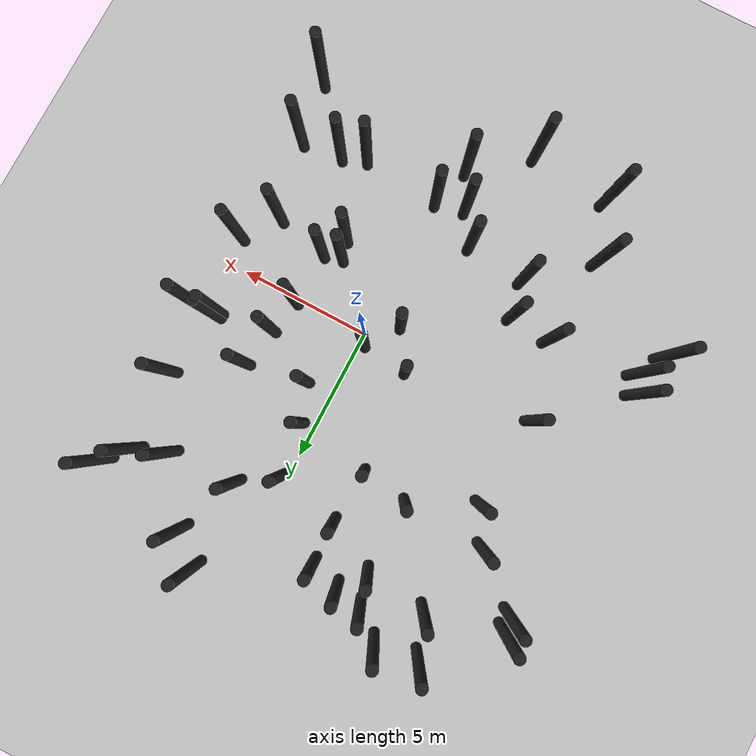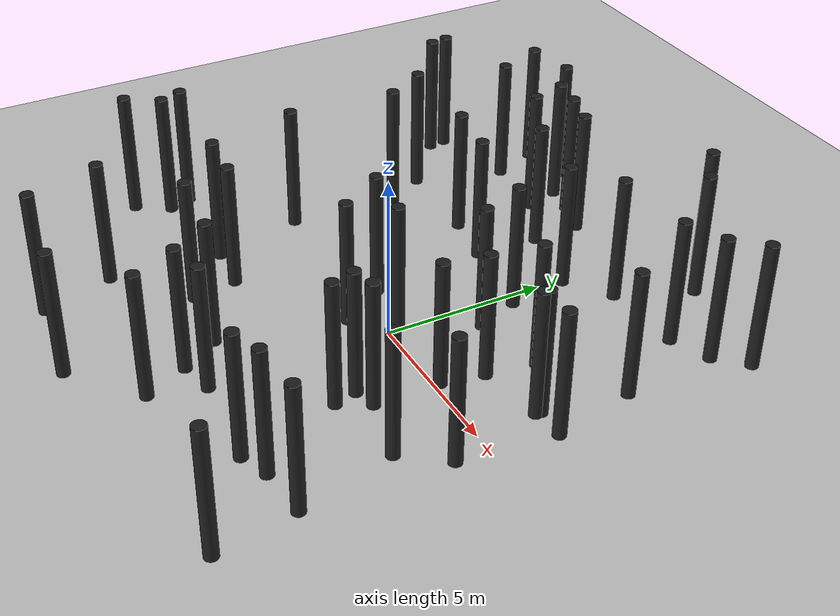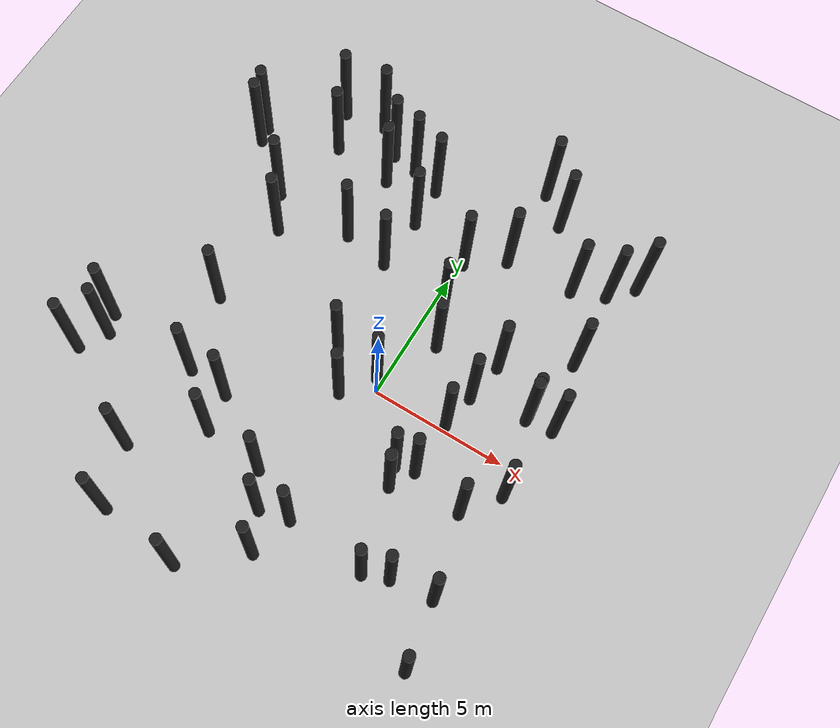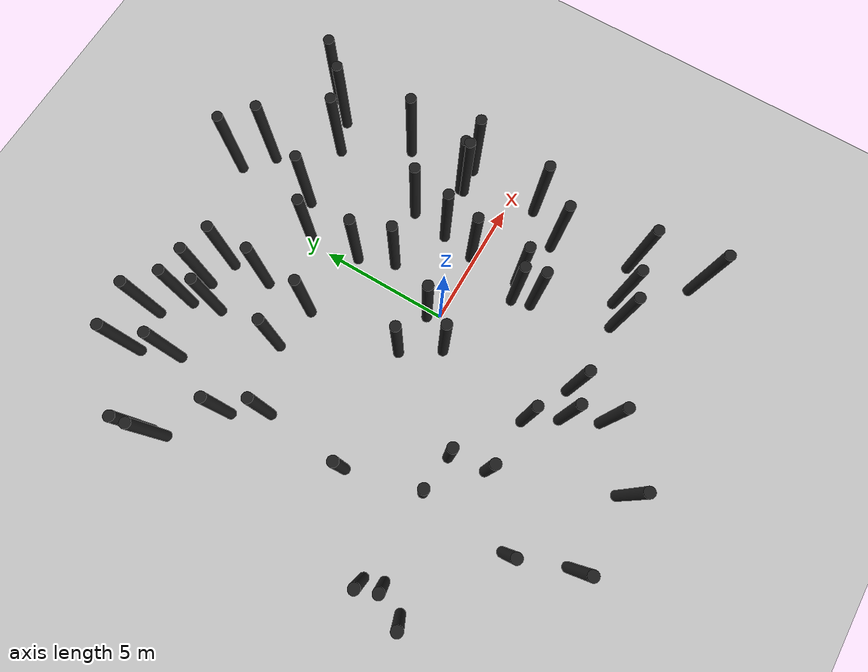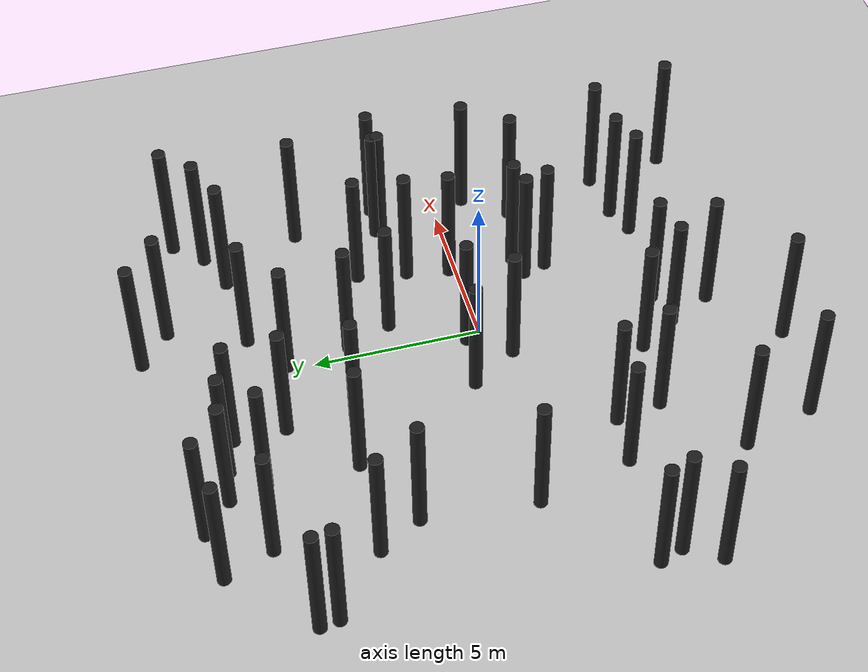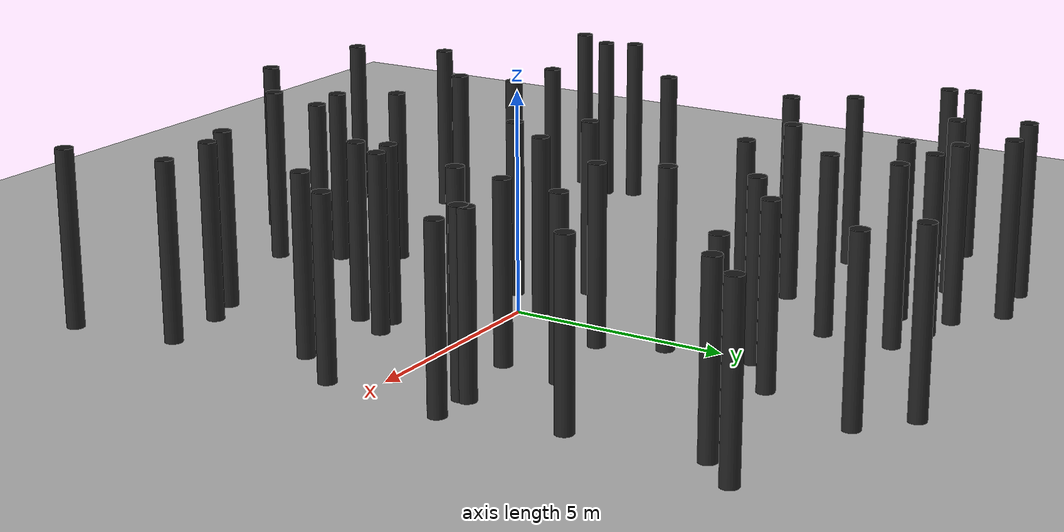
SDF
<sdf version="1.5">
 <world name="default">
  <model name="ground_plane">
   <static>1</static>
   <link name="link">
    <collision name="collision">
     <geometry><plane><normal>0 0 1</normal><size>200 200</size></plane></geometry>
     <surface><friction><ode><mu>100</mu><mu2>50</mu2></ode></friction></surface>
    </collision>
    <visual name="visual">
     <cast_shadows>0</cast_shadows>
     <geometry><plane><normal>0 0 1</normal><size>200 200</size></plane></geometry>
     <material>
      <script><uri>file://media/materials/scripts/gazebo.material</uri><name>Gazebo/Grey</name></script>
     </material>
    </visual>
   </link>
  </model>
  <model name="forest_clone_2">
   <pose>-2.32627 4.31326 -0.001627 0 -0 0</pose>
   <static>1</static>
   <link name="cylinder::link">
    <inertial>
     <mass>1</mass>
     <inertia><ixx>0.083</ixx><ixy>0</ixy><ixz>0</ixz><iyy>0.083</iyy><iyz>0</iyz><izz>0.083</izz></inertia>
    </inertial>
    <collision name="collision">
     <geometry><cylinder><radius>0.2</radius><length>4</length></cylinder></geometry>
    </collision>
    <visual name="visual">
     <geometry><cylinder><radius>0.2</radius><length>4</length></cylinder></geometry>
     <material>
      <script><uri>file://media/materials/scripts/gazebo.material</uri><name>Gazebo/Black</name></script>
     </material>
    </visual>
    <pose>0 0 2 0 -0 0</pose>
   </link>
  </model>
  <model name="forest_clone_5">
   <pose>-4.02803 7.27232 -0.002835 0 -0 0</pose>
   <static>1</static>
   <link name="cylinder::link">
    <inertial>
     <mass>1</mass>
     <inertia><ixx>0.083</ixx><ixy>0</ixy><ixz>0</ixz><iyy>0.083</iyy><iyz>0</iyz><izz>0.083</izz></inertia>
    </inertial>
    <collision name="collision">
     <geometry><cylinder><radius>0.2</radius><length>4</length></cylinder></geometry>
    </collision>
    <visual name="visual">
     <geometry><cylinder><radius>0.2</radius><length>4</length></cylinder></geometry>
     <material>
      <script><uri>file://media/materials/scripts/gazebo.material</uri><name>Gazebo/Black</name></script>
     </material>
    </visual>
    <pose>0 0 2 0 -0 0</pose>
   </link>
  </model>
  <model name="forest_clone_9">
   <pose>4.9494 1.80469 0.002967 0 -0 0</pose>
   <static>1</static>
   <link name="cylinder::link">
    <inertial>
     <mass>1</mass>
     <inertia><ixx>0.083</ixx><ixy>0</ixy><ixz>0</ixz><iyy>0.083</iyy><iyz>0</iyz><izz>0.083</izz></inertia>
    </inertial>
    <collision name="collision">
     <geometry><cylinder><radius>0.2</radius><length>4</length></cylinder></geometry>
    </collision>
    <visual name="visual">
     <geometry><cylinder><radius>0.2</radius><length>4</length></cylinder></geometry>
     <material>
      <script><uri>file://media/materials/scripts/gazebo.material</uri><name>Gazebo/Black</name></script>
     </material>
    </visual>
    <pose>0 0 2 0 -0 0</pose>
   </link>
  </model>
  <model name="forest_clone_11">
   <pose>-4.38543 -2.89842 -0.004006 0 -0 0</pose>
   <static>1</static>
   <link name="cylinder::link">
    <inertial>
     <mass>1</mass>
     <inertia><ixx>0.083</ixx><ixy>0</ixy><ixz>0</ixz><iyy>0.083</iyy><iyz>0</iyz><izz>0.083</izz></inertia>
    </inertial>
    <collision name="collision">
     <geometry><cylinder><radius>0.2</radius><length>4</length></cylinder></geometry>
    </collision>
    <visual name="visual">
     <geometry><cylinder><radius>0.2</radius><length>4</length></cylinder></geometry>
     <material>
      <script><uri>file://media/materials/scripts/gazebo.material</uri><name>Gazebo/Black</name></script>
     </material>
    </visual>
    <pose>0 0 2 0 -0 0</pose>
   </link>
  </model>
  <model name="forest_clone_14">
   <pose>-1.13931 -5.70303 -0.004506 0 -0 0</pose>
   <static>1</static>
   <link name="cylinder::link">
    <inertial>
     <mass>1</mass>
     <inertia><ixx>0.083</ixx><ixy>0</ixy><ixz>0</ixz><iyy>0.083</iyy><iyz>0</iyz><izz>0.083</izz></inertia>
    </inertial>
    <collision name="collision">
     <geometry><cylinder><radius>0.2</radius><length>4</length></cylinder></geometry>
    </collision>
    <visual name="visual">
     <geometry><cylinder><radius>0.2</radius><length>4</length></cylinder></geometry>
     <material>
      <script><uri>file://media/materials/scripts/gazebo.material</uri><name>Gazebo/Black</name></script>
     </material>
    </visual>
    <pose>0 0 2 0 -0 0</pose>
   </link>
  </model>
  <model name="forest_clone_15">
   <pose>-6.35011 3.45369 0.003337 0 -0 0</pose>
   <static>1</static>
   <link name="cylinder::link">
    <inertial>
     <mass>1</mass>
     <inertia><ixx>0.083</ixx><ixy>0</ixy><ixz>0</ixz><iyy>0.083</iyy><iyz>0</iyz><izz>0.083</izz></inertia>
    </inertial>
    <collision name="collision">
     <geometry><cylinder><radius>0.2</radius><length>4</length></cylinder></geometry>
    </collision>
    <visual name="visual">
     <geometry><cylinder><radius>0.2</radius><length>4</length></cylinder></geometry>
     <material>
      <script><uri>file://media/materials/scripts/gazebo.material</uri><name>Gazebo/Black</name></script>
     </material>
    </visual>
    <pose>0 0 2 0 -0 0</pose>
   </link>
  </model>
  <model name="forest_clone_18">
   <pose>5.92535 1.9138 -0.002272 0 -0 0</pose>
   <static>1</static>
   <link name="cylinder::link">
    <inertial>
     <mass>1</mass>
     <inertia><ixx>0.083</ixx><ixy>0</ixy><ixz>0</ixz><iyy>0.083</iyy><iyz>0</iyz><izz>0.083</izz></inertia>
    </inertial>
    <collision name="collision">
     <geometry><cylinder><radius>0.2</radius><length>4</length></cylinder></geometry>
    </collision>
    <visual name="visual">
     <geometry><cylinder><radius>0.2</radius><length>4</length></cylinder></geometry>
     <material>
      <script><uri>file://media/materials/scripts/gazebo.material</uri><name>Gazebo/Black</name></script>
     </material>
    </visual>
    <pose>0 0 2 0 -0 0</pose>
   </link>
  </model>
  <model name="forest_clone_19">
   <pose>-2.20388 6.31733 -0.001496 0 -0 0</pose>
   <static>1</static>
   <link name="cylinder::link">
    <inertial>
     <mass>1</mass>
     <inertia><ixx>0.083</ixx><ixy>0</ixy><ixz>0</ixz><iyy>0.083</iyy><iyz>0</iyz><izz>0.083</izz></inertia>
    </inertial>
    <collision name="collision">
     <geometry><cylinder><radius>0.2</radius><length>4</length></cylinder></geometry>
    </collision>
    <visual name="visual">
     <geometry><cylinder><radius>0.2</radius><length>4</length></cylinder></geometry>
     <material>
      <script><uri>file://media/materials/scripts/gazebo.material</uri><name>Gazebo/Black</name></script>
     </material>
    </visual>
    <pose>0 0 2 0 -0 0</pose>
   </link>
  </model>
  <model name="forest_clone_21">
   <pose>0.126506 5.79653 -0.000546 0 -0 0</pose>
   <static>1</static>
   <link name="cylinder::link">
    <inertial>
     <mass>1</mass>
     <inertia><ixx>0.083</ixx><ixy>0</ixy><ixz>0</ixz><iyy>0.083</iyy><iyz>0</iyz><izz>0.083</izz></inertia>
    </inertial>
    <collision name="collision">
     <geometry><cylinder><radius>0.2</radius><length>4</length></cylinder></geometry>
    </collision>
    <visual name="visual">
     <geometry><cylinder><radius>0.2</radius><length>4</length></cylinder></geometry>
     <material>
      <script><uri>file://media/materials/scripts/gazebo.material</uri><name>Gazebo/Black</name></script>
     </material>
    </visual>
    <pose>0 0 2 0 -0 0</pose>
   </link>
  </model>
  <model name="forest_clone_23">
   <pose>5.38656 4.45946 0.001076 0 -0 0</pose>
   <static>1</static>
   <link name="cylinder::link">
    <inertial>
     <mass>1</mass>
     <inertia><ixx>0.083</ixx><ixy>0</ixy><ixz>0</ixz><iyy>0.083</iyy><iyz>0</iyz><izz>0.083</izz></inertia>
    </inertial>
    <collision name="collision">
     <geometry><cylinder><radius>0.2</radius><length>4</length></cylinder></geometry>
    </collision>
    <visual name="visual">
     <geometry><cylinder><radius>0.2</radius><length>4</length></cylinder></geometry>
     <material>
      <script><uri>file://media/materials/scripts/gazebo.material</uri><name>Gazebo/Black</name></script>
     </material>
    </visual>
    <pose>0 0 2 0 -0 0</pose>
   </link>
  </model>
  <model name="forest_clone_26">
   <pose>4.63647 -2.27152 0.001396 0 -0 0</pose>
   <static>1</static>
   <link name="cylinder::link">
    <inertial>
     <mass>1</mass>
     <inertia><ixx>0.083</ixx><ixy>0</ixy><ixz>0</ixz><iyy>0.083</iyy><iyz>0</iyz><izz>0.083</izz></inertia>
    </inertial>
    <collision name="collision">
     <geometry><cylinder><radius>0.2</radius><length>4</length></cylinder></geometry>
    </collision>
    <visual name="visual">
     <geometry><cylinder><radius>0.2</radius><length>4</length></cylinder></geometry>
     <material>
      <script><uri>file://media/materials/scripts/gazebo.material</uri><name>Gazebo/Black</name></script>
     </material>
    </visual>
    <pose>0 0 2 0 -0 0</pose>
   </link>
  </model>
  <model name="forest_clone_27">
   <pose>4.95092 1.96603 -0.000124 0 -0 0</pose>
   <static>1</static>
   <link name="cylinder::link">
    <inertial>
     <mass>1</mass>
     <inertia><ixx>0.083</ixx><ixy>0</ixy><ixz>0</ixz><iyy>0.083</iyy><iyz>0</iyz><izz>0.083</izz></inertia>
    </inertial>
    <collision name="collision">
     <geometry><cylinder><radius>0.2</radius><length>4</length></cylinder></geometry>
    </collision>
    <visual name="visual">
     <geometry><cylinder><radius>0.2</radius><length>4</length></cylinder></geometry>
     <material>
      <script><uri>file://media/materials/scripts/gazebo.material</uri><name>Gazebo/Black</name></script>
     </material>
    </visual>
    <pose>0 0 2 0 -0 0</pose>
   </link>
  </model>
  <model name="forest_clone_31">
   <pose>-6.85207 8.98828 -0.000139 0 -0 0</pose>
   <static>1</static>
   <link name="cylinder::link">
    <inertial>
     <mass>1</mass>
     <inertia><ixx>0.083</ixx><ixy>0</ixy><ixz>0</ixz><iyy>0.083</iyy><iyz>0</iyz><izz>0.083</izz></inertia>
    </inertial>
    <collision name="collision">
     <geometry><cylinder><radius>0.2</radius><length>4</length></cylinder></geometry>
    </collision>
    <visual name="visual">
     <geometry><cylinder><radius>0.2</radius><length>4</length></cylinder></geometry>
     <material>
      <script><uri>file://media/materials/scripts/gazebo.material</uri><name>Gazebo/Black</name></script>
     </material>
    </visual>
    <pose>0 0 2 0 -0 0</pose>
   </link>
  </model>
  <model name="forest_clone_32">
   <pose>-1.97657 0.643385 0.001926 0 -0 0</pose>
   <static>1</static>
   <link name="cylinder::link">
    <inertial>
     <mass>1</mass>
     <inertia><ixx>0.083</ixx><ixy>0</ixy><ixz>0</ixz><iyy>0.083</iyy><iyz>0</iyz><izz>0.083</izz></inertia>
    </inertial>
    <collision name="collision">
     <geometry><cylinder><radius>0.2</radius><length>4</length></cylinder></geometry>
    </collision>
    <visual name="visual">
     <geometry><cylinder><radius>0.2</radius><length>4</length></cylinder></geometry>
     <material>
      <script><uri>file://media/materials/scripts/gazebo.material</uri><name>Gazebo/Black</name></script>
     </material>
    </visual>
    <pose>0 0 2 0 -0 0</pose>
   </link>
  </model>
  <model name="forest_clone_35">
   <pose>3.95483 6.90924 -0.004175 0 -0 0</pose>
   <static>1</static>
   <link name="cylinder::link">
    <inertial>
     <mass>1</mass>
     <inertia><ixx>0.083</ixx><ixy>0</ixy><ixz>0</ixz><iyy>0.083</iyy><iyz>0</iyz><izz>0.083</izz></inertia>
    </inertial>
    <collision name="collision">
     <geometry><cylinder><radius>0.2</radius><length>4</length></cylinder></geometry>
    </collision>
    <visual name="visual">
     <geometry><cylinder><radius>0.2</radius><length>4</length></cylinder></geometry>
     <material>
      <script><uri>file://media/materials/scripts/gazebo.material</uri><name>Gazebo/Black</name></script>
     </material>
    </visual>
    <pose>0 0 2 0 -0 0</pose>
   </link>
  </model>
  <model name="forest_clone_39">
   <pose>1.96261 -2.00047 -0.003388 0 -0 0</pose>
   <static>1</static>
   <link name="cylinder::link">
    <inertial>
     <mass>1</mass>
     <inertia><ixx>0.083</ixx><ixy>0</ixy><ixz>0</ixz><iyy>0.083</iyy><iyz>0</iyz><izz>0.083</izz></inertia>
    </inertial>
    <collision name="collision">
     <geometry><cylinder><radius>0.2</radius><length>4</length></cylinder></geometry>
    </collision>
    <visual name="visual">
     <geometry><cylinder><radius>0.2</radius><length>4</length></cylinder></geometry>
     <material>
      <script><uri>file://media/materials/scripts/gazebo.material</uri><name>Gazebo/Black</name></script>
     </material>
    </visual>
    <pose>0 0 2 0 -0 0</pose>
   </link>
  </model>
  <model name="forest_clone_45">
   <pose>-5.91536 -2.75286 0.001283 0 -0 0</pose>
   <static>1</static>
   <link name="cylinder::link">
    <inertial>
     <mass>1</mass>
     <inertia><ixx>0.083</ixx><ixy>0</ixy><ixz>0</ixz><iyy>0.083</iyy><iyz>0</iyz><izz>0.083</izz></inertia>
    </inertial>
    <collision name="collision">
     <geometry><cylinder><radius>0.2</radius><length>4</length></cylinder></geometry>
    </collision>
    <visual name="visual">
     <geometry><cylinder><radius>0.2</radius><length>4</length></cylinder></geometry>
     <material>
      <script><uri>file://media/materials/scripts/gazebo.material</uri><name>Gazebo/Black</name></script>
     </material>
    </visual>
    <pose>0 0 2 0 -0 0</pose>
   </link>
  </model>
  <model name="forest_clone_51">
   <pose>3.82708 -5.39292 0.004396 0 -0 0</pose>
   <static>1</static>
   <link name="cylinder::link">
    <inertial>
     <mass>1</mass>
     <inertia><ixx>0.083</ixx><ixy>0</ixy><ixz>0</ixz><iyy>0.083</iyy><iyz>0</iyz><izz>0.083</izz></inertia>
    </inertial>
    <collision name="collision">
     <geometry><cylinder><radius>0.2</radius><length>4</length></cylinder></geometry>
    </collision>
    <visual name="visual">
     <geometry><cylinder><radius>0.2</radius><length>4</length></cylinder></geometry>
     <material>
      <script><uri>file://media/materials/scripts/gazebo.material</uri><name>Gazebo/Black</name></script>
     </material>
    </visual>
    <pose>0 0 2 0 -0 0</pose>
   </link>
  </model>
  <model name="forest_clone_53">
   <pose>5.14675 7.38791 0.003297 0 -0 0</pose>
   <static>1</static>
   <link name="cylinder::link">
    <inertial>
     <mass>1</mass>
     <inertia><ixx>0.083</ixx><ixy>0</ixy><ixz>0</ixz><iyy>0.083</iyy><iyz>0</iyz><izz>0.083</izz></inertia>
    </inertial>
    <collision name="collision">
     <geometry><cylinder><radius>0.2</radius><length>4</length></cylinder></geometry>
    </collision>
    <visual name="visual">
     <geometry><cylinder><radius>0.2</radius><length>4</length></cylinder></geometry>
     <material>
      <script><uri>file://media/materials/scripts/gazebo.material</uri><name>Gazebo/Black</name></script>
     </material>
    </visual>
    <pose>0 0 2 0 -0 0</pose>
   </link>
  </model>
  <model name="forest_clone_54">
   <pose>-1.90214 -4.54583 -0.002734 0 -0 0</pose>
   <static>1</static>
   <link name="cylinder::link">
    <inertial>
     <mass>1</mass>
     <inertia><ixx>0.083</ixx><ixy>0</ixy><ixz>0</ixz><iyy>0.083</iyy><iyz>0</iyz><izz>0.083</izz></inertia>
    </inertial>
    <collision name="collision">
     <geometry><cylinder><radius>0.2</radius><length>4</length></cylinder></geometry>
    </collision>
    <visual name="visual">
     <geometry><cylinder><radius>0.2</radius><length>4</length></cylinder></geometry>
     <material>
      <script><uri>file://media/materials/scripts/gazebo.material</uri><name>Gazebo/Black</name></script>
     </material>
    </visual>
    <pose>0 0 2 0 -0 0</pose>
   </link>
  </model>
  <model name="forest_clone_55">
   <pose>5.77939 -7.65209 -0.001006 0 -0 0</pose>
   <static>1</static>
   <link name="cylinder::link">
    <inertial>
     <mass>1</mass>
     <inertia><ixx>0.083</ixx><ixy>0</ixy><ixz>0</ixz><iyy>0.083</iyy><iyz>0</iyz><izz>0.083</izz></inertia>
    </inertial>
    <collision name="collision">
     <geometry><cylinder><radius>0.2</radius><length>4</length></cylinder></geometry>
    </collision>
    <visual name="visual">
     <geometry><cylinder><radius>0.2</radius><length>4</length></cylinder></geometry>
     <material>
      <script><uri>file://media/materials/scripts/gazebo.material</uri><name>Gazebo/Black</name></script>
     </material>
    </visual>
    <pose>0 0 2 0 -0 0</pose>
   </link>
  </model>
  <model name="forest_clone_58">
   <pose>-7.08669 4.73721 0.002306 0 -0 0</pose>
   <static>1</static>
   <link name="cylinder::link">
    <inertial>
     <mass>1</mass>
     <inertia><ixx>0.083</ixx><ixy>0</ixy><ixz>0</ixz><iyy>0.083</iyy><iyz>0</iyz><izz>0.083</izz></inertia>
    </inertial>
    <collision name="collision">
     <geometry><cylinder><radius>0.2</radius><length>4</length></cylinder></geometry>
    </collision>
    <visual name="visual">
     <geometry><cylinder><radius>0.2</radius><length>4</length></cylinder></geometry>
     <material>
      <script><uri>file://media/materials/scripts/gazebo.material</uri><name>Gazebo/Black</name></script>
     </material>
    </visual>
    <pose>0 0 2 0 -0 0</pose>
   </link>
  </model>
  <model name="forest_clone_59">
   <pose>-6.28718 7.52604 0.004725 0 -0 0</pose>
   <static>1</static>
   <link name="cylinder::link">
    <inertial>
     <mass>1</mass>
     <inertia><ixx>0.083</ixx><ixy>0</ixy><ixz>0</ixz><iyy>0.083</iyy><iyz>0</iyz><izz>0.083</izz></inertia>
    </inertial>
    <collision name="collision">
     <geometry><cylinder><radius>0.2</radius><length>4</length></cylinder></geometry>
    </collision>
    <visual name="visual">
     <geometry><cylinder><radius>0.2</radius><length>4</length></cylinder></geometry>
     <material>
      <script><uri>file://media/materials/scripts/gazebo.material</uri><name>Gazebo/Black</name></script>
     </material>
    </visual>
    <pose>0 0 2 0 -0 0</pose>
   </link>
  </model>
  <model name="forest_clone_60">
   <pose>2.90987 1.48255 -0.004372 0 -0 0</pose>
   <static>1</static>
   <link name="cylinder::link">
    <inertial>
     <mass>1</mass>
     <inertia><ixx>0.083</ixx><ixy>0</ixy><ixz>0</ixz><iyy>0.083</iyy><iyz>0</iyz><izz>0.083</izz></inertia>
    </inertial>
    <collision name="collision">
     <geometry><cylinder><radius>0.2</radius><length>4</length></cylinder></geometry>
    </collision>
    <visual name="visual">
     <geometry><cylinder><radius>0.2</radius><length>4</length></cylinder></geometry>
     <material>
      <script><uri>file://media/materials/scripts/gazebo.material</uri><name>Gazebo/Black</name></script>
     </material>
    </visual>
    <pose>0 0 2 0 -0 0</pose>
   </link>
  </model>
  <model name="forest_clone_67">
   <pose>2.35435 9.00346 -0.004957 0 -0 0</pose>
   <static>1</static>
   <link name="cylinder::link">
    <inertial>
     <mass>1</mass>
     <inertia><ixx>0.083</ixx><ixy>0</ixy><ixz>0</ixz><iyy>0.083</iyy><iyz>0</iyz><izz>0.083</izz></inertia>
    </inertial>
    <collision name="collision">
     <geometry><cylinder><radius>0.2</radius><length>4</length></cylinder></geometry>
    </collision>
    <visual name="visual">
     <geometry><cylinder><radius>0.2</radius><length>4</length></cylinder></geometry>
     <material>
      <script><uri>file://media/materials/scripts/gazebo.material</uri><name>Gazebo/Black</name></script>
     </material>
    </visual>
    <pose>0 0 2 0 -0 0</pose>
   </link>
  </model>
  <model name="forest_clone_68">
   <pose>2.16167 -2.71421 0.000607 0 -0 0</pose>
   <static>1</static>
   <link name="cylinder::link">
    <inertial>
     <mass>1</mass>
     <inertia><ixx>0.083</ixx><ixy>0</ixy><ixz>0</ixz><iyy>0.083</iyy><iyz>0</iyz><izz>0.083</izz></inertia>
    </inertial>
    <collision name="collision">
     <geometry><cylinder><radius>0.2</radius><length>4</length></cylinder></geometry>
    </collision>
    <visual name="visual">
     <geometry><cylinder><radius>0.2</radius><length>4</length></cylinder></geometry>
     <material>
      <script><uri>file://media/materials/scripts/gazebo.material</uri><name>Gazebo/Black</name></script>
     </material>
    </visual>
    <pose>0 0 2 0 -0 0</pose>
   </link>
  </model>
  <model name="forest_clone_73">
   <pose>5.3752 -5.23029 -0.003107 0 -0 0</pose>
   <static>1</static>
   <link name="cylinder::link">
    <inertial>
     <mass>1</mass>
     <inertia><ixx>0.083</ixx><ixy>0</ixy><ixz>0</ixz><iyy>0.083</iyy><iyz>0</iyz><izz>0.083</izz></inertia>
    </inertial>
    <collision name="collision">
     <geometry><cylinder><radius>0.2</radius><length>4</length></cylinder></geometry>
    </collision>
    <visual name="visual">
     <geometry><cylinder><radius>0.2</radius><length>4</length></cylinder></geometry>
     <material>
      <script><uri>file://media/materials/scripts/gazebo.material</uri><name>Gazebo/Black</name></script>
     </material>
    </visual>
    <pose>0 0 2 0 -0 0</pose>
   </link>
  </model>
  <model name="forest_clone_74">
   <pose>1.31878 9.91554 0.003826 0 -0 0</pose>
   <static>1</static>
   <link name="cylinder::link">
    <inertial>
     <mass>1</mass>
     <inertia><ixx>0.083</ixx><ixy>0</ixy><ixz>0</ixz><iyy>0.083</iyy><iyz>0</iyz><izz>0.083</izz></inertia>
    </inertial>
    <collision name="collision">
     <geometry><cylinder><radius>0.2</radius><length>4</length></cylinder></geometry>
    </collision>
    <visual name="visual">
     <geometry><cylinder><radius>0.2</radius><length>4</length></cylinder></geometry>
     <material>
      <script><uri>file://media/materials/scripts/gazebo.material</uri><name>Gazebo/Black</name></script>
     </material>
    </visual>
    <pose>0 0 2 0 -0 0</pose>
   </link>
  </model>
  <model name="forest_clone_78">
   <pose>-5.29095 9.21377 0.003456 0 -0 0</pose>
   <static>1</static>
   <link name="cylinder::link">
    <inertial>
     <mass>1</mass>
     <inertia><ixx>0.083</ixx><ixy>0</ixy><ixz>0</ixz><iyy>0.083</iyy><iyz>0</iyz><izz>0.083</izz></inertia>
    </inertial>
    <collision name="collision">
     <geometry><cylinder><radius>0.2</radius><length>4</length></cylinder></geometry>
    </collision>
    <visual name="visual">
     <geometry><cylinder><radius>0.2</radius><length>4</length></cylinder></geometry>
     <material>
      <script><uri>file://media/materials/scripts/gazebo.material</uri><name>Gazebo/Black</name></script>
     </material>
    </visual>
    <pose>0 0 2 0 -0 0</pose>
   </link>
  </model>
  <model name="forest_clone_79">
   <pose>-9.19141 -3.14274 0.000226 0 -0 0</pose>
   <static>1</static>
   <link name="cylinder::link">
    <inertial>
     <mass>1</mass>
     <inertia><ixx>0.083</ixx><ixy>0</ixy><ixz>0</ixz><iyy>0.083</iyy><iyz>0</iyz><izz>0.083</izz></inertia>
    </inertial>
    <collision name="collision">
     <geometry><cylinder><radius>0.2</radius><length>4</length></cylinder></geometry>
    </collision>
    <visual name="visual">
     <geometry><cylinder><radius>0.2</radius><length>4</length></cylinder></geometry>
     <material>
      <script><uri>file://media/materials/scripts/gazebo.material</uri><name>Gazebo/Black</name></script>
     </material>
    </visual>
    <pose>0 0 2 0 -0 0</pose>
   </link>
  </model>
  <model name="forest_clone_80">
   <pose>-0.486051 -7.03798 -0.004589 0 -0 0</pose>
   <static>1</static>
   <link name="cylinder::link">
    <inertial>
     <mass>1</mass>
     <inertia><ixx>0.083</ixx><ixy>0</ixy><ixz>0</ixz><iyy>0.083</iyy><iyz>0</iyz><izz>0.083</izz></inertia>
    </inertial>
    <collision name="collision">
     <geometry><cylinder><radius>0.2</radius><length>4</length></cylinder></geometry>
    </collision>
    <visual name="visual">
     <geometry><cylinder><radius>0.2</radius><length>4</length></cylinder></geometry>
     <material>
      <script><uri>file://media/materials/scripts/gazebo.material</uri><name>Gazebo/Black</name></script>
     </material>
    </visual>
    <pose>0 0 2 0 -0 0</pose>
   </link>
  </model>
  <model name="forest_clone_82">
   <pose>-1.06767 -0.752338 -0.003155 0 -0 0</pose>
   <static>1</static>
   <link name="cylinder::link">
    <inertial>
     <mass>1</mass>
     <inertia><ixx>0.083</ixx><ixy>0</ixy><ixz>0</ixz><iyy>0.083</iyy><iyz>0</iyz><izz>0.083</izz></inertia>
    </inertial>
    <collision name="collision">
     <geometry><cylinder><radius>0.2</radius><length>4</length></cylinder></geometry>
    </collision>
    <visual name="visual">
     <geometry><cylinder><radius>0.2</radius><length>4</length></cylinder></geometry>
     <material>
      <script><uri>file://media/materials/scripts/gazebo.material</uri><name>Gazebo/Black</name></script>
     </material>
    </visual>
    <pose>0 0 2 0 -0 0</pose>
   </link>
  </model>
  <model name="forest_clone_83">
   <pose>-3.3342 8.19967 0.004501 0 -0 0</pose>
   <static>1</static>
   <link name="cylinder::link">
    <inertial>
     <mass>1</mass>
     <inertia><ixx>0.083</ixx><ixy>0</ixy><ixz>0</ixz><iyy>0.083</iyy><iyz>0</iyz><izz>0.083</izz></inertia>
    </inertial>
    <collision name="collision">
     <geometry><cylinder><radius>0.2</radius><length>4</length></cylinder></geometry>
    </collision>
    <visual name="visual">
     <geometry><cylinder><radius>0.2</radius><length>4</length></cylinder></geometry>
     <material>
      <script><uri>file://media/materials/scripts/gazebo.material</uri><name>Gazebo/Black</name></script>
     </material>
    </visual>
    <pose>0 0 2 0 -0 0</pose>
   </link>
  </model>
  <model name="forest_clone_86">
   <pose>0.403496 3.89696 0.002369 0 -0 0</pose>
   <static>1</static>
   <link name="cylinder::link">
    <inertial>
     <mass>1</mass>
     <inertia><ixx>0.083</ixx><ixy>0</ixy><ixz>0</ixz><iyy>0.083</iyy><iyz>0</iyz><izz>0.083</izz></inertia>
    </inertial>
    <collision name="collision">
     <geometry><cylinder><radius>0.2</radius><length>4</length></cylinder></geometry>
    </collision>
    <visual name="visual">
     <geometry><cylinder><radius>0.2</radius><length>4</length></cylinder></geometry>
     <material>
      <script><uri>file://media/materials/scripts/gazebo.material</uri><name>Gazebo/Black</name></script>
     </material>
    </visual>
    <pose>0 0 2 0 -0 0</pose>
   </link>
  </model>
  <model name="forest_clone_88">
   <pose>5.59807 -0.992307 0.00445 0 -0 0</pose>
   <static>1</static>
   <link name="cylinder::link">
    <inertial>
     <mass>1</mass>
     <inertia><ixx>0.083</ixx><ixy>0</ixy><ixz>0</ixz><iyy>0.083</iyy><iyz>0</iyz><izz>0.083</izz></inertia>
    </inertial>
    <collision name="collision">
     <geometry><cylinder><radius>0.2</radius><length>4</length></cylinder></geometry>
    </collision>
    <visual name="visual">
     <geometry><cylinder><radius>0.2</radius><length>4</length></cylinder></geometry>
     <material>
      <script><uri>file://media/materials/scripts/gazebo.material</uri><name>Gazebo/Black</name></script>
     </material>
    </visual>
    <pose>0 0 2 0 -0 0</pose>
   </link>
  </model>
  <model name="forest_clone_89">
   <pose>-4.14208 -4.2794 0.000485 0 -0 0</pose>
   <static>1</static>
   <link name="cylinder::link">
    <inertial>
     <mass>1</mass>
     <inertia><ixx>0.083</ixx><ixy>0</ixy><ixz>0</ixz><iyy>0.083</iyy><iyz>0</iyz><izz>0.083</izz></inertia>
    </inertial>
    <collision name="collision">
     <geometry><cylinder><radius>0.2</radius><length>4</length></cylinder></geometry>
    </collision>
    <visual name="visual">
     <geometry><cylinder><radius>0.2</radius><length>4</length></cylinder></geometry>
     <material>
      <script><uri>file://media/materials/scripts/gazebo.material</uri><name>Gazebo/Black</name></script>
     </material>
    </visual>
    <pose>0 0 2 0 -0 0</pose>
   </link>
  </model>
  <model name="forest_clone_90">
   <pose>2.93258 -5.7314 0.001316 0 -0 0</pose>
   <static>1</static>
   <link name="cylinder::link">
    <inertial>
     <mass>1</mass>
     <inertia><ixx>0.083</ixx><ixy>0</ixy><ixz>0</ixz><iyy>0.083</iyy><iyz>0</iyz><izz>0.083</izz></inertia>
    </inertial>
    <collision name="collision">
     <geometry><cylinder><radius>0.2</radius><length>4</length></cylinder></geometry>
    </collision>
    <visual name="visual">
     <geometry><cylinder><radius>0.2</radius><length>4</length></cylinder></geometry>
     <material>
      <script><uri>file://media/materials/scripts/gazebo.material</uri><name>Gazebo/Black</name></script>
     </material>
    </visual>
    <pose>0 0 2 0 -0 0</pose>
   </link>
  </model>
  <model name="forest_clone_92">
   <pose>2.64746 -1.81141 0.002792 0 -0 0</pose>
   <static>1</static>
   <link name="cylinder::link">
    <inertial>
     <mass>1</mass>
     <inertia><ixx>0.083</ixx><ixy>0</ixy><ixz>0</ixz><iyy>0.083</iyy><iyz>0</iyz><izz>0.083</izz></inertia>
    </inertial>
    <collision name="collision">
     <geometry><cylinder><radius>0.2</radius><length>4</length></cylinder></geometry>
    </collision>
    <visual name="visual">
     <geometry><cylinder><radius>0.2</radius><length>4</length></cylinder></geometry>
     <material>
      <script><uri>file://media/materials/scripts/gazebo.material</uri><name>Gazebo/Black</name></script>
     </material>
    </visual>
    <pose>0 0 2 0 -0 0</pose>
   </link>
  </model>
  <model name="forest_clone_95">
   <pose>-0.048542 -5.44932 0.001501 0 -0 0</pose>
   <static>1</static>
   <link name="cylinder::link">
    <inertial>
     <mass>1</mass>
     <inertia><ixx>0.083</ixx><ixy>0</ixy><ixz>0</ixz><iyy>0.083</iyy><iyz>0</iyz><izz>0.083</izz></inertia>
    </inertial>
    <collision name="collision">
     <geometry><cylinder><radius>0.2</radius><length>4</length></cylinder></geometry>
    </collision>
    <visual name="visual">
     <geometry><cylinder><radius>0.2</radius><length>4</length></cylinder></geometry>
     <material>
      <script><uri>file://media/materials/scripts/gazebo.material</uri><name>Gazebo/Black</name></script>
     </material>
    </visual>
    <pose>0 0 2 0 -0 0</pose>
   </link>
  </model>
  <model name="forest_clone_100">
   <pose>-0.245855 0.433696 -0.002872 0 -0 0</pose>
   <static>1</static>
   <link name="cylinder::link">
    <inertial>
     <mass>1</mass>
     <inertia><ixx>0.083</ixx><ixy>0</ixy><ixz>0</ixz><iyy>0.083</iyy><iyz>0</iyz><izz>0.083</izz></inertia>
    </inertial>
    <collision name="collision">
     <geometry><cylinder><radius>0.2</radius><length>4</length></cylinder></geometry>
    </collision>
    <visual name="visual">
     <geometry><cylinder><radius>0.2</radius><length>4</length></cylinder></geometry>
     <material>
      <script><uri>file://media/materials/scripts/gazebo.material</uri><name>Gazebo/Black</name></script>
     </material>
    </visual>
    <pose>0 0 2 0 -0 0</pose>
   </link>
  </model>
  <model name="forest_clone_102">
   <pose>-5.51808 -8.36589 0.004582 0 -0 0</pose>
   <static>1</static>
   <link name="cylinder::link">
    <inertial>
     <mass>1</mass>
     <inertia><ixx>0.083</ixx><ixy>0</ixy><ixz>0</ixz><iyy>0.083</iyy><iyz>0</iyz><izz>0.083</izz></inertia>
    </inertial>
    <collision name="collision">
     <geometry><cylinder><radius>0.2</radius><length>4</length></cylinder></geometry>
    </collision>
    <visual name="visual">
     <geometry><cylinder><radius>0.2</radius><length>4</length></cylinder></geometry>
     <material>
      <script><uri>file://media/materials/scripts/gazebo.material</uri><name>Gazebo/Black</name></script>
     </material>
    </visual>
    <pose>0 0 2 0 -0 0</pose>
   </link>
  </model>
  <model name="forest_clone_107">
   <pose>-6.63881 0.080648 -0.003883 0 -0 0</pose>
   <static>1</static>
   <link name="cylinder::link">
    <inertial>
     <mass>1</mass>
     <inertia><ixx>0.083</ixx><ixy>0</ixy><ixz>0</ixz><iyy>0.083</iyy><iyz>0</iyz><izz>0.083</izz></inertia>
    </inertial>
    <collision name="collision">
     <geometry><cylinder><radius>0.2</radius><length>4</length></cylinder></geometry>
    </collision>
    <visual name="visual">
     <geometry><cylinder><radius>0.2</radius><length>4</length></cylinder></geometry>
     <material>
      <script><uri>file://media/materials/scripts/gazebo.material</uri><name>Gazebo/Black</name></script>
     </material>
    </visual>
    <pose>0 0 2 0 -0 0</pose>
   </link>
  </model>
  <model name="forest_clone_111">
   <pose>1.44524 6.74266 -0.000663 0 -0 0</pose>
   <static>1</static>
   <link name="cylinder::link">
    <inertial>
     <mass>1</mass>
     <inertia><ixx>0.083</ixx><ixy>0</ixy><ixz>0</ixz><iyy>0.083</iyy><iyz>0</iyz><izz>0.083</izz></inertia>
    </inertial>
    <collision name="collision">
     <geometry><cylinder><radius>0.2</radius><length>4</length></cylinder></geometry>
    </collision>
    <visual name="visual">
     <geometry><cylinder><radius>0.2</radius><length>4</length></cylinder></geometry>
     <material>
      <script><uri>file://media/materials/scripts/gazebo.material</uri><name>Gazebo/Black</name></script>
     </material>
    </visual>
    <pose>0 0 2 0 -0 0</pose>
   </link>
  </model>
  <model name="forest_clone_113">
   <pose>-2.24219 7.86616 0.002266 0 -0 0</pose>
   <static>1</static>
   <link name="cylinder::link">
    <inertial>
     <mass>1</mass>
     <inertia><ixx>0.083</ixx><ixy>0</ixy><ixz>0</ixz><iyy>0.083</iyy><iyz>0</iyz><izz>0.083</izz></inertia>
    </inertial>
    <collision name="collision">
     <geometry><cylinder><radius>0.2</radius><length>4</length></cylinder></geometry>
    </collision>
    <visual name="visual">
     <geometry><cylinder><radius>0.2</radius><length>4</length></cylinder></geometry>
     <material>
      <script><uri>file://media/materials/scripts/gazebo.material</uri><name>Gazebo/Black</name></script>
     </material>
    </visual>
    <pose>0 0 2 0 -0 0</pose>
   </link>
  </model>
  <model name="forest_clone_117">
   <pose>-2.48664 -8.73314 -0.004621 0 -0 0</pose>
   <static>1</static>
   <link name="cylinder::link">
    <inertial>
     <mass>1</mass>
     <inertia><ixx>0.083</ixx><ixy>0</ixy><ixz>0</ixz><iyy>0.083</iyy><iyz>0</iyz><izz>0.083</izz></inertia>
    </inertial>
    <collision name="collision">
     <geometry><cylinder><radius>0.2</radius><length>4</length></cylinder></geometry>
    </collision>
    <visual name="visual">
     <geometry><cylinder><radius>0.2</radius><length>4</length></cylinder></geometry>
     <material>
      <script><uri>file://media/materials/scripts/gazebo.material</uri><name>Gazebo/Black</name></script>
     </material>
    </visual>
    <pose>0 0 2 0 -0 0</pose>
   </link>
  </model>
  <model name="forest_clone_120">
   <pose>3.15716 2.96956 0.004346 0 -0 0</pose>
   <static>1</static>
   <link name="cylinder::link">
    <inertial>
     <mass>1</mass>
     <inertia><ixx>0.083</ixx><ixy>0</ixy><ixz>0</ixz><iyy>0.083</iyy><iyz>0</iyz><izz>0.083</izz></inertia>
    </inertial>
    <collision name="collision">
     <geometry><cylinder><radius>0.2</radius><length>4</length></cylinder></geometry>
    </collision>
    <visual name="visual">
     <geometry><cylinder><radius>0.2</radius><length>4</length></cylinder></geometry>
     <material>
      <script><uri>file://media/materials/scripts/gazebo.material</uri><name>Gazebo/Black</name></script>
     </material>
    </visual>
    <pose>0 0 2 0 -0 0</pose>
   </link>
  </model>
  <model name="forest_clone_121">
   <pose>-4.32593 8.36867 0.000524 0 -0 0</pose>
   <static>1</static>
   <link name="cylinder::link">
    <inertial>
     <mass>1</mass>
     <inertia><ixx>0.083</ixx><ixy>0</ixy><ixz>0</ixz><iyy>0.083</iyy><iyz>0</iyz><izz>0.083</izz></inertia>
    </inertial>
    <collision name="collision">
     <geometry><cylinder><radius>0.2</radius><length>4</length></cylinder></geometry>
    </collision>
    <visual name="visual">
     <geometry><cylinder><radius>0.2</radius><length>4</length></cylinder></geometry>
     <material>
      <script><uri>file://media/materials/scripts/gazebo.material</uri><name>Gazebo/Black</name></script>
     </material>
    </visual>
    <pose>0 0 2 0 -0 0</pose>
   </link>
  </model>
  <model name="forest_clone_128">
   <pose>-6.24291 -6.16918 0.002445 0 -0 0</pose>
   <static>1</static>
   <link name="cylinder::link">
    <inertial>
     <mass>1</mass>
     <inertia><ixx>0.083</ixx><ixy>0</ixy><ixz>0</ixz><iyy>0.083</iyy><iyz>0</iyz><izz>0.083</izz></inertia>
    </inertial>
    <collision name="collision">
     <geometry><cylinder><radius>0.2</radius><length>4</length></cylinder></geometry>
    </collision>
    <visual name="visual">
     <geometry><cylinder><radius>0.2</radius><length>4</length></cylinder></geometry>
     <material>
      <script><uri>file://media/materials/scripts/gazebo.material</uri><name>Gazebo/Black</name></script>
     </material>
    </visual>
    <pose>0 0 2 0 -0 0</pose>
   </link>
  </model>
  <model name="forest_clone_130">
   <pose>-8.95327 6.29625 0.000437 0 -0 0</pose>
   <static>1</static>
   <link name="cylinder::link">
    <inertial>
     <mass>1</mass>
     <inertia><ixx>0.083</ixx><ixy>0</ixy><ixz>0</ixz><iyy>0.083</iyy><iyz>0</iyz><izz>0.083</izz></inertia>
    </inertial>
    <collision name="collision">
     <geometry><cylinder><radius>0.2</radius><length>4</length></cylinder></geometry>
    </collision>
    <visual name="visual">
     <geometry><cylinder><radius>0.2</radius><length>4</length></cylinder></geometry>
     <material>
      <script><uri>file://media/materials/scripts/gazebo.material</uri><name>Gazebo/Black</name></script>
     </material>
    </visual>
    <pose>0 0 2 0 -0 0</pose>
   </link>
  </model>
  <model name="forest_clone_133">
   <pose>-9.80578 -4.14792 0.000249 0 -0 0</pose>
   <static>1</static>
   <link name="cylinder::link">
    <inertial>
     <mass>1</mass>
     <inertia><ixx>0.083</ixx><ixy>0</ixy><ixz>0</ixz><iyy>0.083</iyy><iyz>0</iyz><izz>0.083</izz></inertia>
    </inertial>
    <collision name="collision">
     <geometry><cylinder><radius>0.2</radius><length>4</length></cylinder></geometry>
    </collision>
    <visual name="visual">
     <geometry><cylinder><radius>0.2</radius><length>4</length></cylinder></geometry>
     <material>
      <script><uri>file://media/materials/scripts/gazebo.material</uri><name>Gazebo/Black</name></script>
     </material>
    </visual>
    <pose>0 0 2 0 -0 0</pose>
   </link>
  </model>
  <model name="forest_clone_135">
   <pose>-9.03647 6.85689 0.000126 0 -0 0</pose>
   <static>1</static>
   <link name="cylinder::link">
    <inertial>
     <mass>1</mass>
     <inertia><ixx>0.083</ixx><ixy>0</ixy><ixz>0</ixz><iyy>0.083</iyy><iyz>0</iyz><izz>0.083</izz></inertia>
    </inertial>
    <collision name="collision">
     <geometry><cylinder><radius>0.2</radius><length>4</length></cylinder></geometry>
    </collision>
    <visual name="visual">
     <geometry><cylinder><radius>0.2</radius><length>4</length></cylinder></geometry>
     <material>
      <script><uri>file://media/materials/scripts/gazebo.material</uri><name>Gazebo/Black</name></script>
     </material>
    </visual>
    <pose>0 0 2 0 -0 0</pose>
   </link>
  </model>
  <model name="forest_clone_137">
   <pose>0.933828 2.53923 0.0012 0 -0 0</pose>
   <static>1</static>
   <link name="cylinder::link">
    <inertial>
     <mass>1</mass>
     <inertia><ixx>0.083</ixx><ixy>0</ixy><ixz>0</ixz><iyy>0.083</iyy><iyz>0</iyz><izz>0.083</izz></inertia>
    </inertial>
    <collision name="collision">
     <geometry><cylinder><radius>0.2</radius><length>4</length></cylinder></geometry>
    </collision>
    <visual name="visual">
     <geometry><cylinder><radius>0.2</radius><length>4</length></cylinder></geometry>
     <material>
      <script><uri>file://media/materials/scripts/gazebo.material</uri><name>Gazebo/Black</name></script>
     </material>
    </visual>
    <pose>0 0 2 0 -0 0</pose>
   </link>
  </model>
  <model name="forest_clone_138">
   <pose>2.68033 0.191453 0.000787 0 -0 0</pose>
   <static>1</static>
   <link name="cylinder::link">
    <inertial>
     <mass>1</mass>
     <inertia><ixx>0.083</ixx><ixy>0</ixy><ixz>0</ixz><iyy>0.083</iyy><iyz>0</iyz><izz>0.083</izz></inertia>
    </inertial>
    <collision name="collision">
     <geometry><cylinder><radius>0.2</radius><length>4</length></cylinder></geometry>
    </collision>
    <visual name="visual">
     <geometry><cylinder><radius>0.2</radius><length>4</length></cylinder></geometry>
     <material>
      <script><uri>file://media/materials/scripts/gazebo.material</uri><name>Gazebo/Black</name></script>
     </material>
    </visual>
    <pose>0 0 2 0 -0 0</pose>
   </link>
  </model>
  <model name="forest_clone_143">
   <pose>-4.04215 4.59946 -0.000964 0 -0 0</pose>
   <static>1</static>
   <link name="cylinder::link">
    <inertial>
     <mass>1</mass>
     <inertia><ixx>0.083</ixx><ixy>0</ixy><ixz>0</ixz><iyy>0.083</iyy><iyz>0</iyz><izz>0.083</izz></inertia>
    </inertial>
    <collision name="collision">
     <geometry><cylinder><radius>0.2</radius><length>4</length></cylinder></geometry>
    </collision>
    <visual name="visual">
     <geometry><cylinder><radius>0.2</radius><length>4</length></cylinder></geometry>
     <material>
      <script><uri>file://media/materials/scripts/gazebo.material</uri><name>Gazebo/Black</name></script>
     </material>
    </visual>
    <pose>0 0 2 0 -0 0</pose>
   </link>
  </model>
  <model name="forest_clone_145">
   <pose>5.91797 8.22573 -0.003035 0 -0 0</pose>
   <static>1</static>
   <link name="cylinder::link">
    <inertial>
     <mass>1</mass>
     <inertia><ixx>0.083</ixx><ixy>0</ixy><ixz>0</ixz><iyy>0.083</iyy><iyz>0</iyz><izz>0.083</izz></inertia>
    </inertial>
    <collision name="collision">
     <geometry><cylinder><radius>0.2</radius><length>4</length></cylinder></geometry>
    </collision>
    <visual name="visual">
     <geometry><cylinder><radius>0.2</radius><length>4</length></cylinder></geometry>
     <material>
      <script><uri>file://media/materials/scripts/gazebo.material</uri><name>Gazebo/Black</name></script>
     </material>
    </visual>
    <pose>0 0 2 0 -0 0</pose>
   </link>
  </model>
  <model name="forest_clone_146">
   <pose>-9.45154 -2.44686 0.000493 0 -0 0</pose>
   <static>1</static>
   <link name="cylinder::link">
    <inertial>
     <mass>1</mass>
     <inertia><ixx>0.083</ixx><ixy>0</ixy><ixz>0</ixz><iyy>0.083</iyy><iyz>0</iyz><izz>0.083</izz></inertia>
    </inertial>
    <collision name="collision">
     <geometry><cylinder><radius>0.2</radius><length>4</length></cylinder></geometry>
    </collision>
    <visual name="visual">
     <geometry><cylinder><radius>0.2</radius><length>4</length></cylinder></geometry>
     <material>
      <script><uri>file://media/materials/scripts/gazebo.material</uri><name>Gazebo/Black</name></script>
     </material>
    </visual>
    <pose>0 0 2 0 -0 0</pose>
   </link>
  </model>
 </world>
</sdf>
